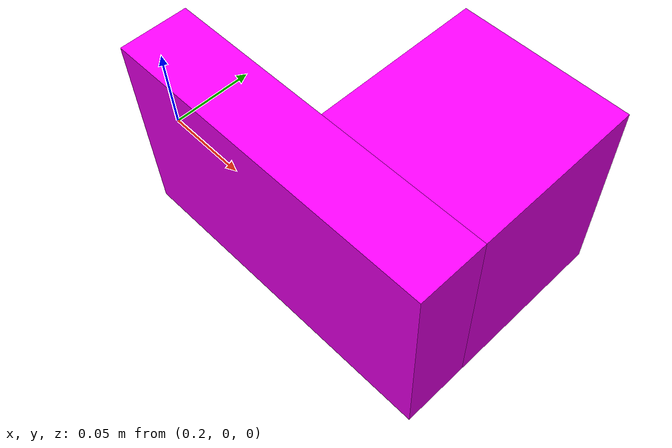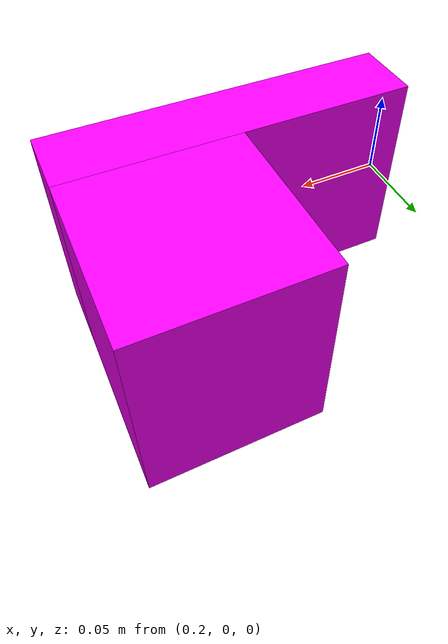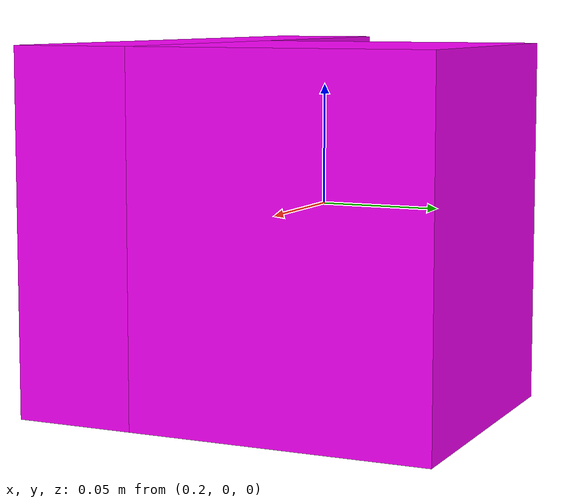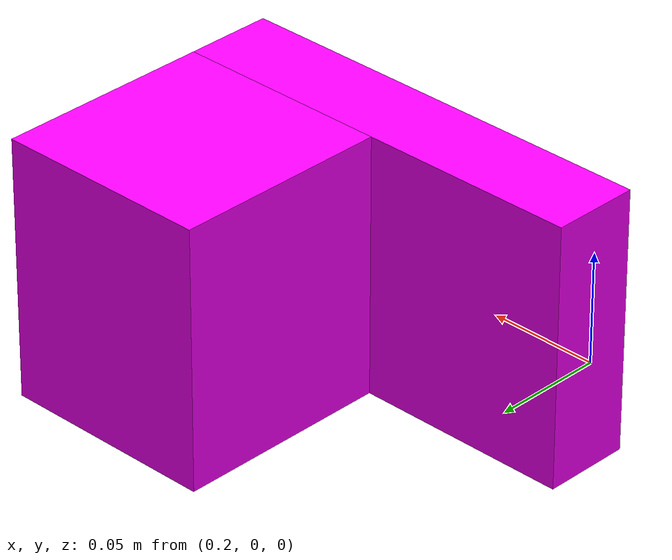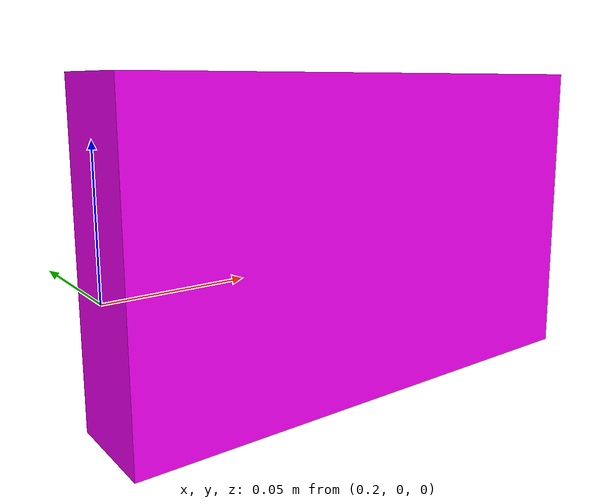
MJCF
<mujoco model="target_box">
    <worldbody>
        <body name="target_box" pos="0.3 0.0 0.0" quat="1 0 0 0">
            <geom name="pushed_box2" pos="0 0 0.01" size="0.1 0.02 0.06" rgba="1 0 1 1.0" type="box" mass="0.5" friction="0.3 0.3 0.3" priority="1"/>
            <geom name="pushed_box2_part" pos="0.05 0.07 0.01" size="0.05 0.05 0.06" rgba="1 0 1 1.0" type="box" mass="0.5" friction="0.3 0.3 0.3" priority="1"/>
            <joint name="pushed_Box_joint2" type="free"/>
        </body>

    </worldbody>
</mujoco>
